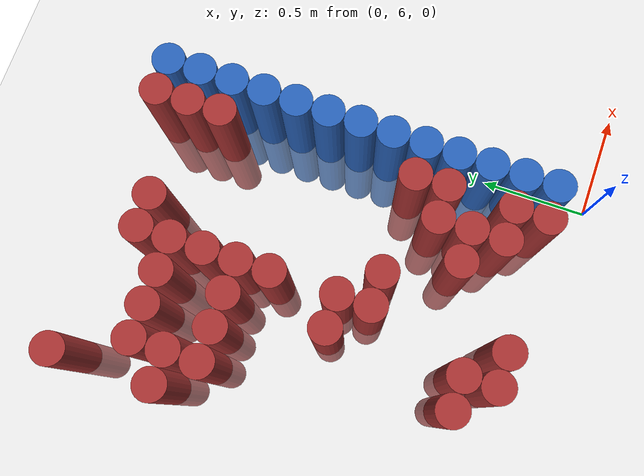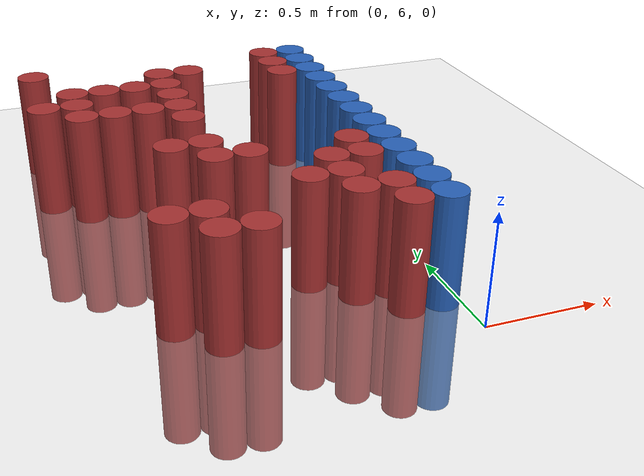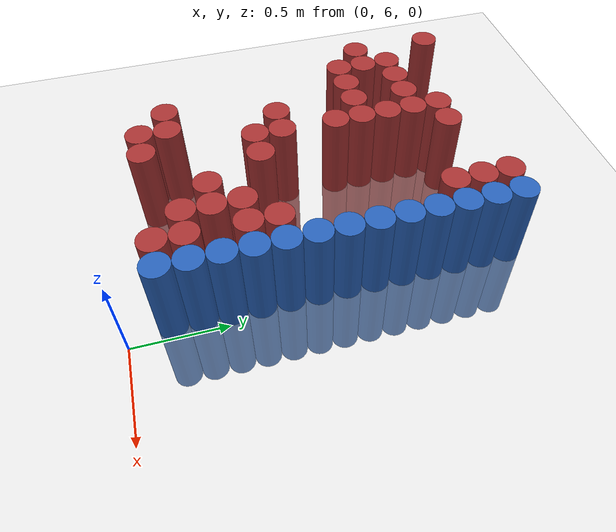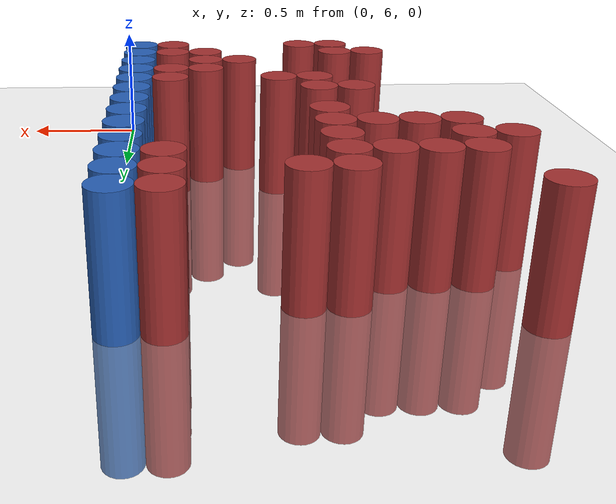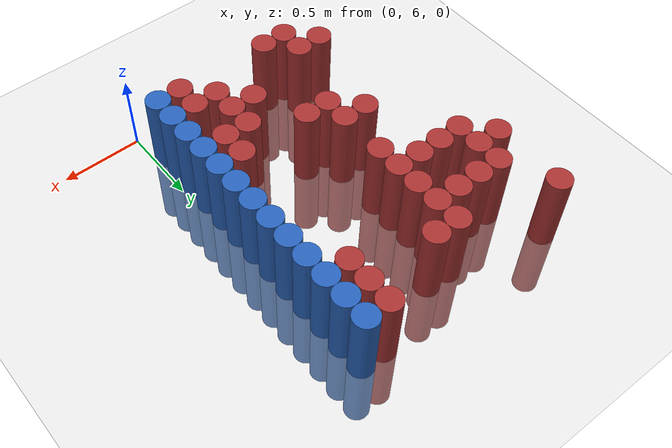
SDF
<sdf version="1.6">
 <world name="default">
  <model name="ground_plane">
   <static>1</static>
   <link name="link">
    <collision name="collision">
     <geometry><plane><normal>0 0 1</normal><size>100 100</size></plane></geometry>
     <surface><friction><ode><mu>100</mu><mu2>50</mu2></ode></friction></surface>
    </collision>
    <visual name="visual">
     <cast_shadows>0</cast_shadows>
     <geometry><plane><normal>0 0 1</normal><size>100 100</size></plane></geometry>
     <material>
      <script><uri>file://media/materials/scripts/gazebo.material</uri><name>Gazebo/Grey</name></script>
     </material>
    </visual>
   </link>
  </model>
  <model name="unit_cylinder_231">
   <static>1</static>
   <pose>-1.425000 7.575000 0.000000 0.000000 0.000000 0.000000</pose>
   <link name="link">
    <inertial>
     <mass>1</mass>
     <inertia><ixx>0.145833</ixx><ixy>0</ixy><ixz>0</ixz><iyy>0.145833</iyy><iyz>0</iyz><izz>0.125</izz></inertia>
    </inertial>
    <collision name="collision">
     <geometry><cylinder><radius>0.075000</radius><length>1</length></cylinder></geometry>
    </collision>
    <visual name="visual">
     <geometry><cylinder><radius>0.075000</radius><length>1</length></cylinder></geometry>
     <material>
      <ambient>0.648000 0.192000 0.192000 1</ambient>
      <diffuse>0.648000 0.192000 0.192000 1</diffuse>
     </material>
     <material>
      <script><name>Gazebo/Grey</name><uri>file://media/materials/scripts/gazebo.material</uri></script>
     </material>
    </visual>
   </link>
  </model>
  <model name="unit_cylinder_232">
   <static>1</static>
   <pose>-1.425000 8.025000 0.000000 0.000000 0.000000 0.000000</pose>
   <link name="link">
    <inertial>
     <mass>1</mass>
     <inertia><ixx>0.145833</ixx><ixy>0</ixy><ixz>0</ixz><iyy>0.145833</iyy><iyz>0</iyz><izz>0.125</izz></inertia>
    </inertial>
    <collision name="collision">
     <geometry><cylinder><radius>0.075000</radius><length>1</length></cylinder></geometry>
    </collision>
    <visual name="visual">
     <geometry><cylinder><radius>0.075000</radius><length>1</length></cylinder></geometry>
     <material>
      <ambient>0.648000 0.192000 0.192000 1</ambient>
      <diffuse>0.648000 0.192000 0.192000 1</diffuse>
     </material>
     <material>
      <script><name>Gazebo/Grey</name><uri>file://media/materials/scripts/gazebo.material</uri></script>
     </material>
    </visual>
   </link>
  </model>
  <model name="unit_cylinder_235">
   <static>1</static>
   <pose>-1.275000 7.425000 0.000000 0.000000 0.000000 0.000000</pose>
   <link name="link">
    <inertial>
     <mass>1</mass>
     <inertia><ixx>0.145833</ixx><ixy>0</ixy><ixz>0</ixz><iyy>0.145833</iyy><iyz>0</iyz><izz>0.125</izz></inertia>
    </inertial>
    <collision name="collision">
     <geometry><cylinder><radius>0.075000</radius><length>1</length></cylinder></geometry>
    </collision>
    <visual name="visual">
     <geometry><cylinder><radius>0.075000</radius><length>1</length></cylinder></geometry>
     <material>
      <ambient>0.648000 0.192000 0.192000 1</ambient>
      <diffuse>0.648000 0.192000 0.192000 1</diffuse>
     </material>
     <material>
      <script><name>Gazebo/Grey</name><uri>file://media/materials/scripts/gazebo.material</uri></script>
     </material>
    </visual>
   </link>
  </model>
  <model name="unit_cylinder_236">
   <static>1</static>
   <pose>-1.275000 7.575000 0.000000 0.000000 0.000000 0.000000</pose>
   <link name="link">
    <inertial>
     <mass>1</mass>
     <inertia><ixx>0.145833</ixx><ixy>0</ixy><ixz>0</ixz><iyy>0.145833</iyy><iyz>0</iyz><izz>0.125</izz></inertia>
    </inertial>
    <collision name="collision">
     <geometry><cylinder><radius>0.075000</radius><length>1</length></cylinder></geometry>
    </collision>
    <visual name="visual">
     <geometry><cylinder><radius>0.075000</radius><length>1</length></cylinder></geometry>
     <material>
      <ambient>0.648000 0.192000 0.192000 1</ambient>
      <diffuse>0.648000 0.192000 0.192000 1</diffuse>
     </material>
     <material>
      <script><name>Gazebo/Grey</name><uri>file://media/materials/scripts/gazebo.material</uri></script>
     </material>
    </visual>
   </link>
  </model>
  <model name="unit_cylinder_237">
   <static>1</static>
   <pose>-1.275000 7.725000 0.000000 0.000000 0.000000 0.000000</pose>
   <link name="link">
    <inertial>
     <mass>1</mass>
     <inertia><ixx>0.145833</ixx><ixy>0</ixy><ixz>0</ixz><iyy>0.145833</iyy><iyz>0</iyz><izz>0.125</izz></inertia>
    </inertial>
    <collision name="collision">
     <geometry><cylinder><radius>0.075000</radius><length>1</length></cylinder></geometry>
    </collision>
    <visual name="visual">
     <geometry><cylinder><radius>0.075000</radius><length>1</length></cylinder></geometry>
     <material>
      <ambient>0.648000 0.192000 0.192000 1</ambient>
      <diffuse>0.648000 0.192000 0.192000 1</diffuse>
     </material>
     <material>
      <script><name>Gazebo/Grey</name><uri>file://media/materials/scripts/gazebo.material</uri></script>
     </material>
    </visual>
   </link>
  </model>
  <model name="unit_cylinder_241">
   <static>1</static>
   <pose>-1.125000 6.375000 0.000000 0.000000 0.000000 0.000000</pose>
   <link name="link">
    <inertial>
     <mass>1</mass>
     <inertia><ixx>0.145833</ixx><ixy>0</ixy><ixz>0</ixz><iyy>0.145833</iyy><iyz>0</iyz><izz>0.125</izz></inertia>
    </inertial>
    <collision name="collision">
     <geometry><cylinder><radius>0.075000</radius><length>1</length></cylinder></geometry>
    </collision>
    <visual name="visual">
     <geometry><cylinder><radius>0.075000</radius><length>1</length></cylinder></geometry>
     <material>
      <ambient>0.648000 0.192000 0.192000 1</ambient>
      <diffuse>0.648000 0.192000 0.192000 1</diffuse>
     </material>
     <material>
      <script><name>Gazebo/Grey</name><uri>file://media/materials/scripts/gazebo.material</uri></script>
     </material>
    </visual>
   </link>
  </model>
  <model name="unit_cylinder_242">
   <static>1</static>
   <pose>-1.125000 7.425000 0.000000 0.000000 0.000000 0.000000</pose>
   <link name="link">
    <inertial>
     <mass>1</mass>
     <inertia><ixx>0.145833</ixx><ixy>0</ixy><ixz>0</ixz><iyy>0.145833</iyy><iyz>0</iyz><izz>0.125</izz></inertia>
    </inertial>
    <collision name="collision">
     <geometry><cylinder><radius>0.075000</radius><length>1</length></cylinder></geometry>
    </collision>
    <visual name="visual">
     <geometry><cylinder><radius>0.075000</radius><length>1</length></cylinder></geometry>
     <material>
      <ambient>0.648000 0.192000 0.192000 1</ambient>
      <diffuse>0.648000 0.192000 0.192000 1</diffuse>
     </material>
     <material>
      <script><name>Gazebo/Grey</name><uri>file://media/materials/scripts/gazebo.material</uri></script>
     </material>
    </visual>
   </link>
  </model>
  <model name="unit_cylinder_243">
   <static>1</static>
   <pose>-1.125000 7.725000 0.000000 0.000000 0.000000 0.000000</pose>
   <link name="link">
    <inertial>
     <mass>1</mass>
     <inertia><ixx>0.145833</ixx><ixy>0</ixy><ixz>0</ixz><iyy>0.145833</iyy><iyz>0</iyz><izz>0.125</izz></inertia>
    </inertial>
    <collision name="collision">
     <geometry><cylinder><radius>0.075000</radius><length>1</length></cylinder></geometry>
    </collision>
    <visual name="visual">
     <geometry><cylinder><radius>0.075000</radius><length>1</length></cylinder></geometry>
     <material>
      <ambient>0.648000 0.192000 0.192000 1</ambient>
      <diffuse>0.648000 0.192000 0.192000 1</diffuse>
     </material>
     <material>
      <script><name>Gazebo/Grey</name><uri>file://media/materials/scripts/gazebo.material</uri></script>
     </material>
    </visual>
   </link>
  </model>
  <model name="unit_cylinder_249">
   <static>1</static>
   <pose>-0.975000 6.225000 0.000000 0.000000 0.000000 0.000000</pose>
   <link name="link">
    <inertial>
     <mass>1</mass>
     <inertia><ixx>0.145833</ixx><ixy>0</ixy><ixz>0</ixz><iyy>0.145833</iyy><iyz>0</iyz><izz>0.125</izz></inertia>
    </inertial>
    <collision name="collision">
     <geometry><cylinder><radius>0.075000</radius><length>1</length></cylinder></geometry>
    </collision>
    <visual name="visual">
     <geometry><cylinder><radius>0.075000</radius><length>1</length></cylinder></geometry>
     <material>
      <ambient>0.648000 0.192000 0.192000 1</ambient>
      <diffuse>0.648000 0.192000 0.192000 1</diffuse>
     </material>
     <material>
      <script><name>Gazebo/Grey</name><uri>file://media/materials/scripts/gazebo.material</uri></script>
     </material>
    </visual>
   </link>
  </model>
  <model name="unit_cylinder_250">
   <static>1</static>
   <pose>-0.975000 6.375000 0.000000 0.000000 0.000000 0.000000</pose>
   <link name="link">
    <inertial>
     <mass>1</mass>
     <inertia><ixx>0.145833</ixx><ixy>0</ixy><ixz>0</ixz><iyy>0.145833</iyy><iyz>0</iyz><izz>0.125</izz></inertia>
    </inertial>
    <collision name="collision">
     <geometry><cylinder><radius>0.075000</radius><length>1</length></cylinder></geometry>
    </collision>
    <visual name="visual">
     <geometry><cylinder><radius>0.075000</radius><length>1</length></cylinder></geometry>
     <material>
      <ambient>0.648000 0.192000 0.192000 1</ambient>
      <diffuse>0.648000 0.192000 0.192000 1</diffuse>
     </material>
     <material>
      <script><name>Gazebo/Grey</name><uri>file://media/materials/scripts/gazebo.material</uri></script>
     </material>
    </visual>
   </link>
  </model>
  <model name="unit_cylinder_251">
   <static>1</static>
   <pose>-0.975000 6.975000 0.000000 0.000000 0.000000 0.000000</pose>
   <link name="link">
    <inertial>
     <mass>1</mass>
     <inertia><ixx>0.145833</ixx><ixy>0</ixy><ixz>0</ixz><iyy>0.145833</iyy><iyz>0</iyz><izz>0.125</izz></inertia>
    </inertial>
    <collision name="collision">
     <geometry><cylinder><radius>0.075000</radius><length>1</length></cylinder></geometry>
    </collision>
    <visual name="visual">
     <geometry><cylinder><radius>0.075000</radius><length>1</length></cylinder></geometry>
     <material>
      <ambient>0.648000 0.192000 0.192000 1</ambient>
      <diffuse>0.648000 0.192000 0.192000 1</diffuse>
     </material>
     <material>
      <script><name>Gazebo/Grey</name><uri>file://media/materials/scripts/gazebo.material</uri></script>
     </material>
    </visual>
   </link>
  </model>
  <model name="unit_cylinder_252">
   <static>1</static>
   <pose>-0.975000 7.425000 0.000000 0.000000 0.000000 0.000000</pose>
   <link name="link">
    <inertial>
     <mass>1</mass>
     <inertia><ixx>0.145833</ixx><ixy>0</ixy><ixz>0</ixz><iyy>0.145833</iyy><iyz>0</iyz><izz>0.125</izz></inertia>
    </inertial>
    <collision name="collision">
     <geometry><cylinder><radius>0.075000</radius><length>1</length></cylinder></geometry>
    </collision>
    <visual name="visual">
     <geometry><cylinder><radius>0.075000</radius><length>1</length></cylinder></geometry>
     <material>
      <ambient>0.648000 0.192000 0.192000 1</ambient>
      <diffuse>0.648000 0.192000 0.192000 1</diffuse>
     </material>
     <material>
      <script><name>Gazebo/Grey</name><uri>file://media/materials/scripts/gazebo.material</uri></script>
     </material>
    </visual>
   </link>
  </model>
  <model name="unit_cylinder_253">
   <static>1</static>
   <pose>-0.975000 7.725000 0.000000 0.000000 0.000000 0.000000</pose>
   <link name="link">
    <inertial>
     <mass>1</mass>
     <inertia><ixx>0.145833</ixx><ixy>0</ixy><ixz>0</ixz><iyy>0.145833</iyy><iyz>0</iyz><izz>0.125</izz></inertia>
    </inertial>
    <collision name="collision">
     <geometry><cylinder><radius>0.075000</radius><length>1</length></cylinder></geometry>
    </collision>
    <visual name="visual">
     <geometry><cylinder><radius>0.075000</radius><length>1</length></cylinder></geometry>
     <material>
      <ambient>0.648000 0.192000 0.192000 1</ambient>
      <diffuse>0.648000 0.192000 0.192000 1</diffuse>
     </material>
     <material>
      <script><name>Gazebo/Grey</name><uri>file://media/materials/scripts/gazebo.material</uri></script>
     </material>
    </visual>
   </link>
  </model>
  <model name="unit_cylinder_256">
   <static>1</static>
   <pose>-0.825000 6.225000 0.000000 0.000000 0.000000 0.000000</pose>
   <link name="link">
    <inertial>
     <mass>1</mass>
     <inertia><ixx>0.145833</ixx><ixy>0</ixy><ixz>0</ixz><iyy>0.145833</iyy><iyz>0</iyz><izz>0.125</izz></inertia>
    </inertial>
    <collision name="collision">
     <geometry><cylinder><radius>0.075000</radius><length>1</length></cylinder></geometry>
    </collision>
    <visual name="visual">
     <geometry><cylinder><radius>0.075000</radius><length>1</length></cylinder></geometry>
     <material>
      <ambient>0.648000 0.192000 0.192000 1</ambient>
      <diffuse>0.648000 0.192000 0.192000 1</diffuse>
     </material>
     <material>
      <script><name>Gazebo/Grey</name><uri>file://media/materials/scripts/gazebo.material</uri></script>
     </material>
    </visual>
   </link>
  </model>
  <model name="unit_cylinder_257">
   <static>1</static>
   <pose>-0.825000 6.825000 0.000000 0.000000 0.000000 0.000000</pose>
   <link name="link">
    <inertial>
     <mass>1</mass>
     <inertia><ixx>0.145833</ixx><ixy>0</ixy><ixz>0</ixz><iyy>0.145833</iyy><iyz>0</iyz><izz>0.125</izz></inertia>
    </inertial>
    <collision name="collision">
     <geometry><cylinder><radius>0.075000</radius><length>1</length></cylinder></geometry>
    </collision>
    <visual name="visual">
     <geometry><cylinder><radius>0.075000</radius><length>1</length></cylinder></geometry>
     <material>
      <ambient>0.648000 0.192000 0.192000 1</ambient>
      <diffuse>0.648000 0.192000 0.192000 1</diffuse>
     </material>
     <material>
      <script><name>Gazebo/Grey</name><uri>file://media/materials/scripts/gazebo.material</uri></script>
     </material>
    </visual>
   </link>
  </model>
  <model name="unit_cylinder_258">
   <static>1</static>
   <pose>-0.825000 6.975000 0.000000 0.000000 0.000000 0.000000</pose>
   <link name="link">
    <inertial>
     <mass>1</mass>
     <inertia><ixx>0.145833</ixx><ixy>0</ixy><ixz>0</ixz><iyy>0.145833</iyy><iyz>0</iyz><izz>0.125</izz></inertia>
    </inertial>
    <collision name="collision">
     <geometry><cylinder><radius>0.075000</radius><length>1</length></cylinder></geometry>
    </collision>
    <visual name="visual">
     <geometry><cylinder><radius>0.075000</radius><length>1</length></cylinder></geometry>
     <material>
      <ambient>0.648000 0.192000 0.192000 1</ambient>
      <diffuse>0.648000 0.192000 0.192000 1</diffuse>
     </material>
     <material>
      <script><name>Gazebo/Grey</name><uri>file://media/materials/scripts/gazebo.material</uri></script>
     </material>
    </visual>
   </link>
  </model>
  <model name="unit_cylinder_259">
   <static>1</static>
   <pose>-0.825000 7.275000 0.000000 0.000000 0.000000 0.000000</pose>
   <link name="link">
    <inertial>
     <mass>1</mass>
     <inertia><ixx>0.145833</ixx><ixy>0</ixy><ixz>0</ixz><iyy>0.145833</iyy><iyz>0</iyz><izz>0.125</izz></inertia>
    </inertial>
    <collision name="collision">
     <geometry><cylinder><radius>0.075000</radius><length>1</length></cylinder></geometry>
    </collision>
    <visual name="visual">
     <geometry><cylinder><radius>0.075000</radius><length>1</length></cylinder></geometry>
     <material>
      <ambient>0.648000 0.192000 0.192000 1</ambient>
      <diffuse>0.648000 0.192000 0.192000 1</diffuse>
     </material>
     <material>
      <script><name>Gazebo/Grey</name><uri>file://media/materials/scripts/gazebo.material</uri></script>
     </material>
    </visual>
   </link>
  </model>
  <model name="unit_cylinder_260">
   <static>1</static>
   <pose>-0.825000 7.425000 0.000000 0.000000 0.000000 0.000000</pose>
   <link name="link">
    <inertial>
     <mass>1</mass>
     <inertia><ixx>0.145833</ixx><ixy>0</ixy><ixz>0</ixz><iyy>0.145833</iyy><iyz>0</iyz><izz>0.125</izz></inertia>
    </inertial>
    <collision name="collision">
     <geometry><cylinder><radius>0.075000</radius><length>1</length></cylinder></geometry>
    </collision>
    <visual name="visual">
     <geometry><cylinder><radius>0.075000</radius><length>1</length></cylinder></geometry>
     <material>
      <ambient>0.648000 0.192000 0.192000 1</ambient>
      <diffuse>0.648000 0.192000 0.192000 1</diffuse>
     </material>
     <material>
      <script><name>Gazebo/Grey</name><uri>file://media/materials/scripts/gazebo.material</uri></script>
     </material>
    </visual>
   </link>
  </model>
  <model name="unit_cylinder_261">
   <static>1</static>
   <pose>-0.825000 7.575000 0.000000 0.000000 0.000000 0.000000</pose>
   <link name="link">
    <inertial>
     <mass>1</mass>
     <inertia><ixx>0.145833</ixx><ixy>0</ixy><ixz>0</ixz><iyy>0.145833</iyy><iyz>0</iyz><izz>0.125</izz></inertia>
    </inertial>
    <collision name="collision">
     <geometry><cylinder><radius>0.075000</radius><length>1</length></cylinder></geometry>
    </collision>
    <visual name="visual">
     <geometry><cylinder><radius>0.075000</radius><length>1</length></cylinder></geometry>
     <material>
      <ambient>0.648000 0.192000 0.192000 1</ambient>
      <diffuse>0.648000 0.192000 0.192000 1</diffuse>
     </material>
     <material>
      <script><name>Gazebo/Grey</name><uri>file://media/materials/scripts/gazebo.material</uri></script>
     </material>
    </visual>
   </link>
  </model>
  <model name="unit_cylinder_262">
   <static>1</static>
   <pose>-0.825000 7.725000 0.000000 0.000000 0.000000 0.000000</pose>
   <link name="link">
    <inertial>
     <mass>1</mass>
     <inertia><ixx>0.145833</ixx><ixy>0</ixy><ixz>0</ixz><iyy>0.145833</iyy><iyz>0</iyz><izz>0.125</izz></inertia>
    </inertial>
    <collision name="collision">
     <geometry><cylinder><radius>0.075000</radius><length>1</length></cylinder></geometry>
    </collision>
    <visual name="visual">
     <geometry><cylinder><radius>0.075000</radius><length>1</length></cylinder></geometry>
     <material>
      <ambient>0.648000 0.192000 0.192000 1</ambient>
      <diffuse>0.648000 0.192000 0.192000 1</diffuse>
     </material>
     <material>
      <script><name>Gazebo/Grey</name><uri>file://media/materials/scripts/gazebo.material</uri></script>
     </material>
    </visual>
   </link>
  </model>
  <model name="unit_cylinder_263">
   <static>1</static>
   <pose>-0.825000 7.875000 0.000000 0.000000 0.000000 0.000000</pose>
   <link name="link">
    <inertial>
     <mass>1</mass>
     <inertia><ixx>0.145833</ixx><ixy>0</ixy><ixz>0</ixz><iyy>0.145833</iyy><iyz>0</iyz><izz>0.125</izz></inertia>
    </inertial>
    <collision name="collision">
     <geometry><cylinder><radius>0.075000</radius><length>1</length></cylinder></geometry>
    </collision>
    <visual name="visual">
     <geometry><cylinder><radius>0.075000</radius><length>1</length></cylinder></geometry>
     <material>
      <ambient>0.648000 0.192000 0.192000 1</ambient>
      <diffuse>0.648000 0.192000 0.192000 1</diffuse>
     </material>
     <material>
      <script><name>Gazebo/Grey</name><uri>file://media/materials/scripts/gazebo.material</uri></script>
     </material>
    </visual>
   </link>
  </model>
  <model name="unit_cylinder_267">
   <static>1</static>
   <pose>-0.675000 6.825000 0.000000 0.000000 0.000000 0.000000</pose>
   <link name="link">
    <inertial>
     <mass>1</mass>
     <inertia><ixx>0.145833</ixx><ixy>0</ixy><ixz>0</ixz><iyy>0.145833</iyy><iyz>0</iyz><izz>0.125</izz></inertia>
    </inertial>
    <collision name="collision">
     <geometry><cylinder><radius>0.075000</radius><length>1</length></cylinder></geometry>
    </collision>
    <visual name="visual">
     <geometry><cylinder><radius>0.075000</radius><length>1</length></cylinder></geometry>
     <material>
      <ambient>0.648000 0.192000 0.192000 1</ambient>
      <diffuse>0.648000 0.192000 0.192000 1</diffuse>
     </material>
     <material>
      <script><name>Gazebo/Grey</name><uri>file://media/materials/scripts/gazebo.material</uri></script>
     </material>
    </visual>
   </link>
  </model>
  <model name="unit_cylinder_268">
   <static>1</static>
   <pose>-0.675000 7.875000 0.000000 0.000000 0.000000 0.000000</pose>
   <link name="link">
    <inertial>
     <mass>1</mass>
     <inertia><ixx>0.145833</ixx><ixy>0</ixy><ixz>0</ixz><iyy>0.145833</iyy><iyz>0</iyz><izz>0.125</izz></inertia>
    </inertial>
    <collision name="collision">
     <geometry><cylinder><radius>0.075000</radius><length>1</length></cylinder></geometry>
    </collision>
    <visual name="visual">
     <geometry><cylinder><radius>0.075000</radius><length>1</length></cylinder></geometry>
     <material>
      <ambient>0.648000 0.192000 0.192000 1</ambient>
      <diffuse>0.648000 0.192000 0.192000 1</diffuse>
     </material>
     <material>
      <script><name>Gazebo/Grey</name><uri>file://media/materials/scripts/gazebo.material</uri></script>
     </material>
    </visual>
   </link>
  </model>
  <model name="unit_cylinder_273">
   <static>1</static>
   <pose>-0.525000 6.525000 0.000000 0.000000 0.000000 0.000000</pose>
   <link name="link">
    <inertial>
     <mass>1</mass>
     <inertia><ixx>0.145833</ixx><ixy>0</ixy><ixz>0</ixz><iyy>0.145833</iyy><iyz>0</iyz><izz>0.125</izz></inertia>
    </inertial>
    <collision name="collision">
     <geometry><cylinder><radius>0.075000</radius><length>1</length></cylinder></geometry>
    </collision>
    <visual name="visual">
     <geometry><cylinder><radius>0.075000</radius><length>1</length></cylinder></geometry>
     <material>
      <ambient>0.648000 0.192000 0.192000 1</ambient>
      <diffuse>0.648000 0.192000 0.192000 1</diffuse>
     </material>
     <material>
      <script><name>Gazebo/Grey</name><uri>file://media/materials/scripts/gazebo.material</uri></script>
     </material>
    </visual>
   </link>
  </model>
  <model name="unit_cylinder_278">
   <static>1</static>
   <pose>-0.375000 6.375000 0.000000 0.000000 0.000000 0.000000</pose>
   <link name="link">
    <inertial>
     <mass>1</mass>
     <inertia><ixx>0.145833</ixx><ixy>0</ixy><ixz>0</ixz><iyy>0.145833</iyy><iyz>0</iyz><izz>0.125</izz></inertia>
    </inertial>
    <collision name="collision">
     <geometry><cylinder><radius>0.075000</radius><length>1</length></cylinder></geometry>
    </collision>
    <visual name="visual">
     <geometry><cylinder><radius>0.075000</radius><length>1</length></cylinder></geometry>
     <material>
      <ambient>0.648000 0.192000 0.192000 1</ambient>
      <diffuse>0.648000 0.192000 0.192000 1</diffuse>
     </material>
     <material>
      <script><name>Gazebo/Grey</name><uri>file://media/materials/scripts/gazebo.material</uri></script>
     </material>
    </visual>
   </link>
  </model>
  <model name="unit_cylinder_279">
   <static>1</static>
   <pose>-0.375000 6.525000 0.000000 0.000000 0.000000 0.000000</pose>
   <link name="link">
    <inertial>
     <mass>1</mass>
     <inertia><ixx>0.145833</ixx><ixy>0</ixy><ixz>0</ixz><iyy>0.145833</iyy><iyz>0</iyz><izz>0.125</izz></inertia>
    </inertial>
    <collision name="collision">
     <geometry><cylinder><radius>0.075000</radius><length>1</length></cylinder></geometry>
    </collision>
    <visual name="visual">
     <geometry><cylinder><radius>0.075000</radius><length>1</length></cylinder></geometry>
     <material>
      <ambient>0.648000 0.192000 0.192000 1</ambient>
      <diffuse>0.648000 0.192000 0.192000 1</diffuse>
     </material>
     <material>
      <script><name>Gazebo/Grey</name><uri>file://media/materials/scripts/gazebo.material</uri></script>
     </material>
    </visual>
   </link>
  </model>
  <model name="unit_cylinder_280">
   <static>1</static>
   <pose>-0.375000 6.675000 0.000000 0.000000 0.000000 0.000000</pose>
   <link name="link">
    <inertial>
     <mass>1</mass>
     <inertia><ixx>0.145833</ixx><ixy>0</ixy><ixz>0</ixz><iyy>0.145833</iyy><iyz>0</iyz><izz>0.125</izz></inertia>
    </inertial>
    <collision name="collision">
     <geometry><cylinder><radius>0.075000</radius><length>1</length></cylinder></geometry>
    </collision>
    <visual name="visual">
     <geometry><cylinder><radius>0.075000</radius><length>1</length></cylinder></geometry>
     <material>
      <ambient>0.648000 0.192000 0.192000 1</ambient>
      <diffuse>0.648000 0.192000 0.192000 1</diffuse>
     </material>
     <material>
      <script><name>Gazebo/Grey</name><uri>file://media/materials/scripts/gazebo.material</uri></script>
     </material>
    </visual>
   </link>
  </model>
  <model name="unit_cylinder_287">
   <static>1</static>
   <pose>-0.225000 6.225000 0.000000 0.000000 0.000000 0.000000</pose>
   <link name="link">
    <inertial>
     <mass>1</mass>
     <inertia><ixx>0.145833</ixx><ixy>0</ixy><ixz>0</ixz><iyy>0.145833</iyy><iyz>0</iyz><izz>0.125</izz></inertia>
    </inertial>
    <collision name="collision">
     <geometry><cylinder><radius>0.075000</radius><length>1</length></cylinder></geometry>
    </collision>
    <visual name="visual">
     <geometry><cylinder><radius>0.075000</radius><length>1</length></cylinder></geometry>
     <material>
      <ambient>0.648000 0.192000 0.192000 1</ambient>
      <diffuse>0.648000 0.192000 0.192000 1</diffuse>
     </material>
     <material>
      <script><name>Gazebo/Grey</name><uri>file://media/materials/scripts/gazebo.material</uri></script>
     </material>
    </visual>
   </link>
  </model>
  <model name="unit_cylinder_288">
   <static>1</static>
   <pose>-0.225000 6.375000 0.000000 0.000000 0.000000 0.000000</pose>
   <link name="link">
    <inertial>
     <mass>1</mass>
     <inertia><ixx>0.145833</ixx><ixy>0</ixy><ixz>0</ixz><iyy>0.145833</iyy><iyz>0</iyz><izz>0.125</izz></inertia>
    </inertial>
    <collision name="collision">
     <geometry><cylinder><radius>0.075000</radius><length>1</length></cylinder></geometry>
    </collision>
    <visual name="visual">
     <geometry><cylinder><radius>0.075000</radius><length>1</length></cylinder></geometry>
     <material>
      <ambient>0.648000 0.192000 0.192000 1</ambient>
      <diffuse>0.648000 0.192000 0.192000 1</diffuse>
     </material>
     <material>
      <script><name>Gazebo/Grey</name><uri>file://media/materials/scripts/gazebo.material</uri></script>
     </material>
    </visual>
   </link>
  </model>
  <model name="unit_cylinder_289">
   <static>1</static>
   <pose>-0.225000 6.675000 0.000000 0.000000 0.000000 0.000000</pose>
   <link name="link">
    <inertial>
     <mass>1</mass>
     <inertia><ixx>0.145833</ixx><ixy>0</ixy><ixz>0</ixz><iyy>0.145833</iyy><iyz>0</iyz><izz>0.125</izz></inertia>
    </inertial>
    <collision name="collision">
     <geometry><cylinder><radius>0.075000</radius><length>1</length></cylinder></geometry>
    </collision>
    <visual name="visual">
     <geometry><cylinder><radius>0.075000</radius><length>1</length></cylinder></geometry>
     <material>
      <ambient>0.648000 0.192000 0.192000 1</ambient>
      <diffuse>0.648000 0.192000 0.192000 1</diffuse>
     </material>
     <material>
      <script><name>Gazebo/Grey</name><uri>file://media/materials/scripts/gazebo.material</uri></script>
     </material>
    </visual>
   </link>
  </model>
  <model name="unit_cylinder_290">
   <static>1</static>
   <pose>-0.225000 6.825000 0.000000 0.000000 0.000000 0.000000</pose>
   <link name="link">
    <inertial>
     <mass>1</mass>
     <inertia><ixx>0.145833</ixx><ixy>0</ixy><ixz>0</ixz><iyy>0.145833</iyy><iyz>0</iyz><izz>0.125</izz></inertia>
    </inertial>
    <collision name="collision">
     <geometry><cylinder><radius>0.075000</radius><length>1</length></cylinder></geometry>
    </collision>
    <visual name="visual">
     <geometry><cylinder><radius>0.075000</radius><length>1</length></cylinder></geometry>
     <material>
      <ambient>0.648000 0.192000 0.192000 1</ambient>
      <diffuse>0.648000 0.192000 0.192000 1</diffuse>
     </material>
     <material>
      <script><name>Gazebo/Grey</name><uri>file://media/materials/scripts/gazebo.material</uri></script>
     </material>
    </visual>
   </link>
  </model>
  <model name="unit_cylinder_291">
   <static>1</static>
   <pose>-0.225000 7.725000 0.000000 0.000000 0.000000 0.000000</pose>
   <link name="link">
    <inertial>
     <mass>1</mass>
     <inertia><ixx>0.145833</ixx><ixy>0</ixy><ixz>0</ixz><iyy>0.145833</iyy><iyz>0</iyz><izz>0.125</izz></inertia>
    </inertial>
    <collision name="collision">
     <geometry><cylinder><radius>0.075000</radius><length>1</length></cylinder></geometry>
    </collision>
    <visual name="visual">
     <geometry><cylinder><radius>0.075000</radius><length>1</length></cylinder></geometry>
     <material>
      <ambient>0.648000 0.192000 0.192000 1</ambient>
      <diffuse>0.648000 0.192000 0.192000 1</diffuse>
     </material>
     <material>
      <script><name>Gazebo/Grey</name><uri>file://media/materials/scripts/gazebo.material</uri></script>
     </material>
    </visual>
   </link>
  </model>
  <model name="unit_cylinder_292">
   <static>1</static>
   <pose>-0.225000 7.875000 0.000000 0.000000 0.000000 0.000000</pose>
   <link name="link">
    <inertial>
     <mass>1</mass>
     <inertia><ixx>0.145833</ixx><ixy>0</ixy><ixz>0</ixz><iyy>0.145833</iyy><iyz>0</iyz><izz>0.125</izz></inertia>
    </inertial>
    <collision name="collision">
     <geometry><cylinder><radius>0.075000</radius><length>1</length></cylinder></geometry>
    </collision>
    <visual name="visual">
     <geometry><cylinder><radius>0.075000</radius><length>1</length></cylinder></geometry>
     <material>
      <ambient>0.648000 0.192000 0.192000 1</ambient>
      <diffuse>0.648000 0.192000 0.192000 1</diffuse>
     </material>
     <material>
      <script><name>Gazebo/Grey</name><uri>file://media/materials/scripts/gazebo.material</uri></script>
     </material>
    </visual>
   </link>
  </model>
  <model name="unit_cylinder_293">
   <static>1</static>
   <pose>-0.225000 8.025000 0.000000 0.000000 0.000000 0.000000</pose>
   <link name="link">
    <inertial>
     <mass>1</mass>
     <inertia><ixx>0.145833</ixx><ixy>0</ixy><ixz>0</ixz><iyy>0.145833</iyy><iyz>0</iyz><izz>0.125</izz></inertia>
    </inertial>
    <collision name="collision">
     <geometry><cylinder><radius>0.075000</radius><length>1</length></cylinder></geometry>
    </collision>
    <visual name="visual">
     <geometry><cylinder><radius>0.075000</radius><length>1</length></cylinder></geometry>
     <material>
      <ambient>0.648000 0.192000 0.192000 1</ambient>
      <diffuse>0.648000 0.192000 0.192000 1</diffuse>
     </material>
     <material>
      <script><name>Gazebo/Grey</name><uri>file://media/materials/scripts/gazebo.material</uri></script>
     </material>
    </visual>
   </link>
  </model>
  <model name="unit_cylinder_307">
   <static>1</static>
   <pose>-0.075000 6.225000 0.000000 0.000000 0.000000 0.000000</pose>
   <link name="link">
    <inertial>
     <mass>1</mass>
     <inertia><ixx>0.145833</ixx><ixy>0</ixy><ixz>0</ixz><iyy>0.145833</iyy><iyz>0</iyz><izz>0.125</izz></inertia>
    </inertial>
    <collision name="collision">
     <geometry><cylinder><radius>0.075000</radius><length>1</length></cylinder></geometry>
    </collision>
    <visual name="visual">
     <geometry><cylinder><radius>0.075000</radius><length>1</length></cylinder></geometry>
     <material>
      <ambient>0.152000 0.379000 0.720000 1</ambient>
      <diffuse>0.152000 0.379000 0.720000 1</diffuse>
     </material>
     <material>
      <script><name>Gazebo/Grey</name><uri>file://media/materials/scripts/gazebo.material</uri></script>
     </material>
    </visual>
   </link>
  </model>
  <model name="unit_cylinder_308">
   <static>1</static>
   <pose>-0.075000 6.375000 0.000000 0.000000 0.000000 0.000000</pose>
   <link name="link">
    <inertial>
     <mass>1</mass>
     <inertia><ixx>0.145833</ixx><ixy>0</ixy><ixz>0</ixz><iyy>0.145833</iyy><iyz>0</iyz><izz>0.125</izz></inertia>
    </inertial>
    <collision name="collision">
     <geometry><cylinder><radius>0.075000</radius><length>1</length></cylinder></geometry>
    </collision>
    <visual name="visual">
     <geometry><cylinder><radius>0.075000</radius><length>1</length></cylinder></geometry>
     <material>
      <ambient>0.152000 0.379000 0.720000 1</ambient>
      <diffuse>0.152000 0.379000 0.720000 1</diffuse>
     </material>
     <material>
      <script><name>Gazebo/Grey</name><uri>file://media/materials/scripts/gazebo.material</uri></script>
     </material>
    </visual>
   </link>
  </model>
  <model name="unit_cylinder_309">
   <static>1</static>
   <pose>-0.075000 6.525000 0.000000 0.000000 0.000000 0.000000</pose>
   <link name="link">
    <inertial>
     <mass>1</mass>
     <inertia><ixx>0.145833</ixx><ixy>0</ixy><ixz>0</ixz><iyy>0.145833</iyy><iyz>0</iyz><izz>0.125</izz></inertia>
    </inertial>
    <collision name="collision">
     <geometry><cylinder><radius>0.075000</radius><length>1</length></cylinder></geometry>
    </collision>
    <visual name="visual">
     <geometry><cylinder><radius>0.075000</radius><length>1</length></cylinder></geometry>
     <material>
      <ambient>0.152000 0.379000 0.720000 1</ambient>
      <diffuse>0.152000 0.379000 0.720000 1</diffuse>
     </material>
     <material>
      <script><name>Gazebo/Grey</name><uri>file://media/materials/scripts/gazebo.material</uri></script>
     </material>
    </visual>
   </link>
  </model>
  <model name="unit_cylinder_310">
   <static>1</static>
   <pose>-0.075000 6.675000 0.000000 0.000000 0.000000 0.000000</pose>
   <link name="link">
    <inertial>
     <mass>1</mass>
     <inertia><ixx>0.145833</ixx><ixy>0</ixy><ixz>0</ixz><iyy>0.145833</iyy><iyz>0</iyz><izz>0.125</izz></inertia>
    </inertial>
    <collision name="collision">
     <geometry><cylinder><radius>0.075000</radius><length>1</length></cylinder></geometry>
    </collision>
    <visual name="visual">
     <geometry><cylinder><radius>0.075000</radius><length>1</length></cylinder></geometry>
     <material>
      <ambient>0.152000 0.379000 0.720000 1</ambient>
      <diffuse>0.152000 0.379000 0.720000 1</diffuse>
     </material>
     <material>
      <script><name>Gazebo/Grey</name><uri>file://media/materials/scripts/gazebo.material</uri></script>
     </material>
    </visual>
   </link>
  </model>
  <model name="unit_cylinder_311">
   <static>1</static>
   <pose>-0.075000 6.825000 0.000000 0.000000 0.000000 0.000000</pose>
   <link name="link">
    <inertial>
     <mass>1</mass>
     <inertia><ixx>0.145833</ixx><ixy>0</ixy><ixz>0</ixz><iyy>0.145833</iyy><iyz>0</iyz><izz>0.125</izz></inertia>
    </inertial>
    <collision name="collision">
     <geometry><cylinder><radius>0.075000</radius><length>1</length></cylinder></geometry>
    </collision>
    <visual name="visual">
     <geometry><cylinder><radius>0.075000</radius><length>1</length></cylinder></geometry>
     <material>
      <ambient>0.152000 0.379000 0.720000 1</ambient>
      <diffuse>0.152000 0.379000 0.720000 1</diffuse>
     </material>
     <material>
      <script><name>Gazebo/Grey</name><uri>file://media/materials/scripts/gazebo.material</uri></script>
     </material>
    </visual>
   </link>
  </model>
  <model name="unit_cylinder_312">
   <static>1</static>
   <pose>-0.075000 6.975000 0.000000 0.000000 0.000000 0.000000</pose>
   <link name="link">
    <inertial>
     <mass>1</mass>
     <inertia><ixx>0.145833</ixx><ixy>0</ixy><ixz>0</ixz><iyy>0.145833</iyy><iyz>0</iyz><izz>0.125</izz></inertia>
    </inertial>
    <collision name="collision">
     <geometry><cylinder><radius>0.075000</radius><length>1</length></cylinder></geometry>
    </collision>
    <visual name="visual">
     <geometry><cylinder><radius>0.075000</radius><length>1</length></cylinder></geometry>
     <material>
      <ambient>0.152000 0.379000 0.720000 1</ambient>
      <diffuse>0.152000 0.379000 0.720000 1</diffuse>
     </material>
     <material>
      <script><name>Gazebo/Grey</name><uri>file://media/materials/scripts/gazebo.material</uri></script>
     </material>
    </visual>
   </link>
  </model>
  <model name="unit_cylinder_313">
   <static>1</static>
   <pose>-0.075000 7.125000 0.000000 0.000000 0.000000 0.000000</pose>
   <link name="link">
    <inertial>
     <mass>1</mass>
     <inertia><ixx>0.145833</ixx><ixy>0</ixy><ixz>0</ixz><iyy>0.145833</iyy><iyz>0</iyz><izz>0.125</izz></inertia>
    </inertial>
    <collision name="collision">
     <geometry><cylinder><radius>0.075000</radius><length>1</length></cylinder></geometry>
    </collision>
    <visual name="visual">
     <geometry><cylinder><radius>0.075000</radius><length>1</length></cylinder></geometry>
     <material>
      <ambient>0.152000 0.379000 0.720000 1</ambient>
      <diffuse>0.152000 0.379000 0.720000 1</diffuse>
     </material>
     <material>
      <script><name>Gazebo/Grey</name><uri>file://media/materials/scripts/gazebo.material</uri></script>
     </material>
    </visual>
   </link>
  </model>
  <model name="unit_cylinder_314">
   <static>1</static>
   <pose>-0.075000 7.275000 0.000000 0.000000 0.000000 0.000000</pose>
   <link name="link">
    <inertial>
     <mass>1</mass>
     <inertia><ixx>0.145833</ixx><ixy>0</ixy><ixz>0</ixz><iyy>0.145833</iyy><iyz>0</iyz><izz>0.125</izz></inertia>
    </inertial>
    <collision name="collision">
     <geometry><cylinder><radius>0.075000</radius><length>1</length></cylinder></geometry>
    </collision>
    <visual name="visual">
     <geometry><cylinder><radius>0.075000</radius><length>1</length></cylinder></geometry>
     <material>
      <ambient>0.152000 0.379000 0.720000 1</ambient>
      <diffuse>0.152000 0.379000 0.720000 1</diffuse>
     </material>
     <material>
      <script><name>Gazebo/Grey</name><uri>file://media/materials/scripts/gazebo.material</uri></script>
     </material>
    </visual>
   </link>
  </model>
  <model name="unit_cylinder_315">
   <static>1</static>
   <pose>-0.075000 7.425000 0.000000 0.000000 0.000000 0.000000</pose>
   <link name="link">
    <inertial>
     <mass>1</mass>
     <inertia><ixx>0.145833</ixx><ixy>0</ixy><ixz>0</ixz><iyy>0.145833</iyy><iyz>0</iyz><izz>0.125</izz></inertia>
    </inertial>
    <collision name="collision">
     <geometry><cylinder><radius>0.075000</radius><length>1</length></cylinder></geometry>
    </collision>
    <visual name="visual">
     <geometry><cylinder><radius>0.075000</radius><length>1</length></cylinder></geometry>
     <material>
      <ambient>0.152000 0.379000 0.720000 1</ambient>
      <diffuse>0.152000 0.379000 0.720000 1</diffuse>
     </material>
     <material>
      <script><name>Gazebo/Grey</name><uri>file://media/materials/scripts/gazebo.material</uri></script>
     </material>
    </visual>
   </link>
  </model>
  <model name="unit_cylinder_316">
   <static>1</static>
   <pose>-0.075000 7.575000 0.000000 0.000000 0.000000 0.000000</pose>
   <link name="link">
    <inertial>
     <mass>1</mass>
     <inertia><ixx>0.145833</ixx><ixy>0</ixy><ixz>0</ixz><iyy>0.145833</iyy><iyz>0</iyz><izz>0.125</izz></inertia>
    </inertial>
    <collision name="collision">
     <geometry><cylinder><radius>0.075000</radius><length>1</length></cylinder></geometry>
    </collision>
    <visual name="visual">
     <geometry><cylinder><radius>0.075000</radius><length>1</length></cylinder></geometry>
     <material>
      <ambient>0.152000 0.379000 0.720000 1</ambient>
      <diffuse>0.152000 0.379000 0.720000 1</diffuse>
     </material>
     <material>
      <script><name>Gazebo/Grey</name><uri>file://media/materials/scripts/gazebo.material</uri></script>
     </material>
    </visual>
   </link>
  </model>
  <model name="unit_cylinder_317">
   <static>1</static>
   <pose>-0.075000 7.725000 0.000000 0.000000 0.000000 0.000000</pose>
   <link name="link">
    <inertial>
     <mass>1</mass>
     <inertia><ixx>0.145833</ixx><ixy>0</ixy><ixz>0</ixz><iyy>0.145833</iyy><iyz>0</iyz><izz>0.125</izz></inertia>
    </inertial>
    <collision name="collision">
     <geometry><cylinder><radius>0.075000</radius><length>1</length></cylinder></geometry>
    </collision>
    <visual name="visual">
     <geometry><cylinder><radius>0.075000</radius><length>1</length></cylinder></geometry>
     <material>
      <ambient>0.152000 0.379000 0.720000 1</ambient>
      <diffuse>0.152000 0.379000 0.720000 1</diffuse>
     </material>
     <material>
      <script><name>Gazebo/Grey</name><uri>file://media/materials/scripts/gazebo.material</uri></script>
     </material>
    </visual>
   </link>
  </model>
  <model name="unit_cylinder_318">
   <static>1</static>
   <pose>-0.075000 7.875000 0.000000 0.000000 0.000000 0.000000</pose>
   <link name="link">
    <inertial>
     <mass>1</mass>
     <inertia><ixx>0.145833</ixx><ixy>0</ixy><ixz>0</ixz><iyy>0.145833</iyy><iyz>0</iyz><izz>0.125</izz></inertia>
    </inertial>
    <collision name="collision">
     <geometry><cylinder><radius>0.075000</radius><length>1</length></cylinder></geometry>
    </collision>
    <visual name="visual">
     <geometry><cylinder><radius>0.075000</radius><length>1</length></cylinder></geometry>
     <material>
      <ambient>0.152000 0.379000 0.720000 1</ambient>
      <diffuse>0.152000 0.379000 0.720000 1</diffuse>
     </material>
     <material>
      <script><name>Gazebo/Grey</name><uri>file://media/materials/scripts/gazebo.material</uri></script>
     </material>
    </visual>
   </link>
  </model>
  <model name="unit_cylinder_319">
   <static>1</static>
   <pose>-0.075000 8.025000 0.000000 0.000000 0.000000 0.000000</pose>
   <link name="link">
    <inertial>
     <mass>1</mass>
     <inertia><ixx>0.145833</ixx><ixy>0</ixy><ixz>0</ixz><iyy>0.145833</iyy><iyz>0</iyz><izz>0.125</izz></inertia>
    </inertial>
    <collision name="collision">
     <geometry><cylinder><radius>0.075000</radius><length>1</length></cylinder></geometry>
    </collision>
    <visual name="visual">
     <geometry><cylinder><radius>0.075000</radius><length>1</length></cylinder></geometry>
     <material>
      <ambient>0.152000 0.379000 0.720000 1</ambient>
      <diffuse>0.152000 0.379000 0.720000 1</diffuse>
     </material>
     <material>
      <script><name>Gazebo/Grey</name><uri>file://media/materials/scripts/gazebo.material</uri></script>
     </material>
    </visual>
   </link>
  </model>
 </world>
</sdf>
